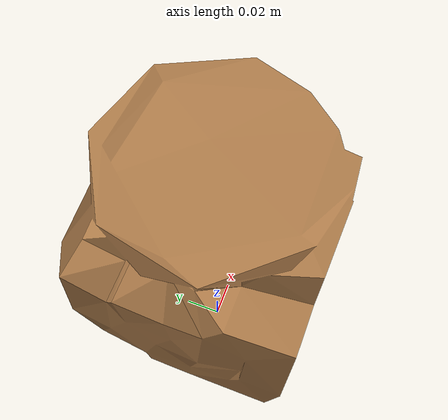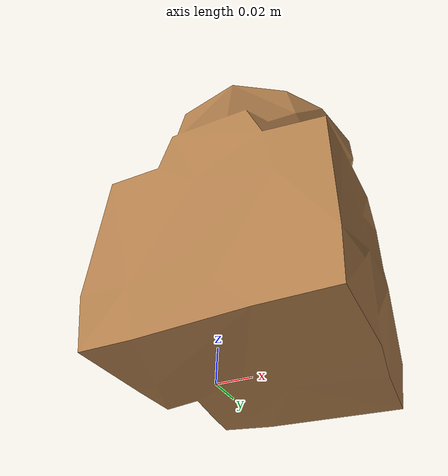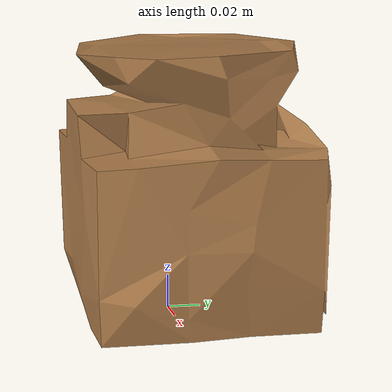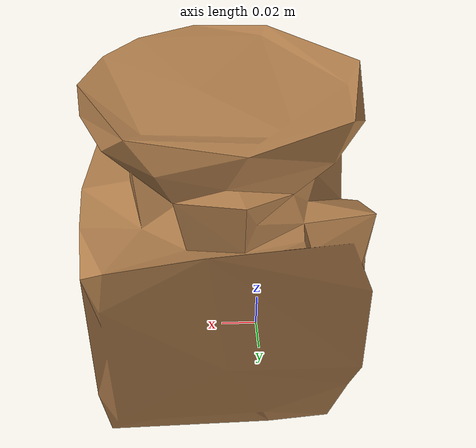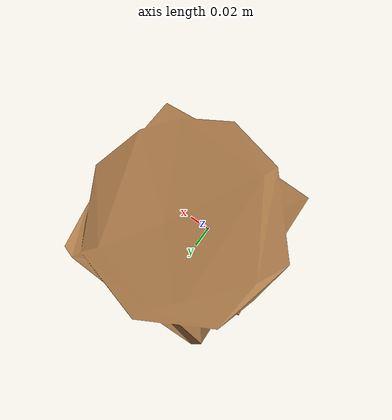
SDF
<?xml version='1.0'?>
<sdf version="1.4">
  <model name="070-a_colored_wood_blocks">
    <static>false</static>
    <link name="link">
      <inertial>
        <pose>0.020088664839557818 0.008894880572107852 0.07995269436675194 3.139554502636489 0.022066169345698206 2.8059929223808027</pose>
        <mass>0.292510791220938</mass>
        <inertia>
          <ixx>0.0010485480168605375</ixx>
          <ixy>2.9004105163944376e-20</ixy>
          <ixz>-2.874188811711384e-21</ixz>
          <iyy>0.0010352417405759158</iyy>
          <iyz>2.6525417301074237e-21</iyz>
          <izz>0.0008599883419842097</izz>
        </inertia>
      </inertial>
      <collision name="collision">
        <geometry>
          <mesh>
            <!-- Use a downsampled mesh for collisions -->
            <uri>model:///070-a_colored_wood_blocks/070-a_colored_wood_blocks_250_collision.stl</uri>
	        </mesh>
        </geometry>
        <surface>
      </surface>
      </collision>
      <visual name="visual">
        <geometry>
          <mesh>
            <uri>model:///070-a_colored_wood_blocks/textured.obj</uri>
	        </mesh>
        </geometry>
        <material>
          <script>
            <uri>model:///070-a_colored_wood_blocks/070-a_colored_wood_blocks.material</uri>
            <name>070-a_colored_wood_blocks</name>
          </script>
        </material>
      </visual>
    </link>
  </model>
</sdf>
